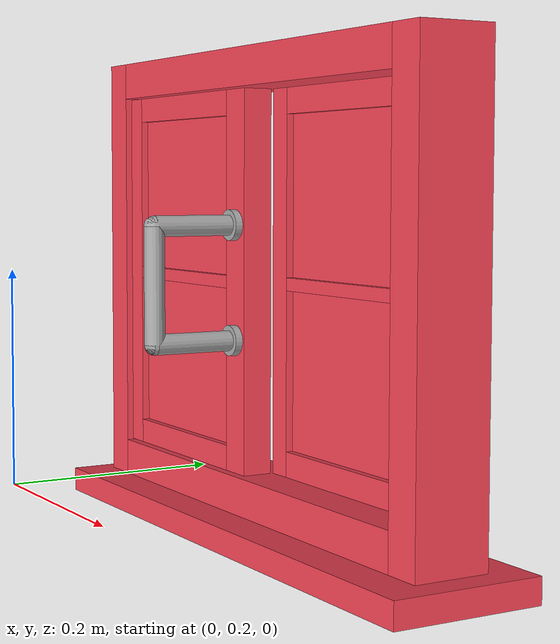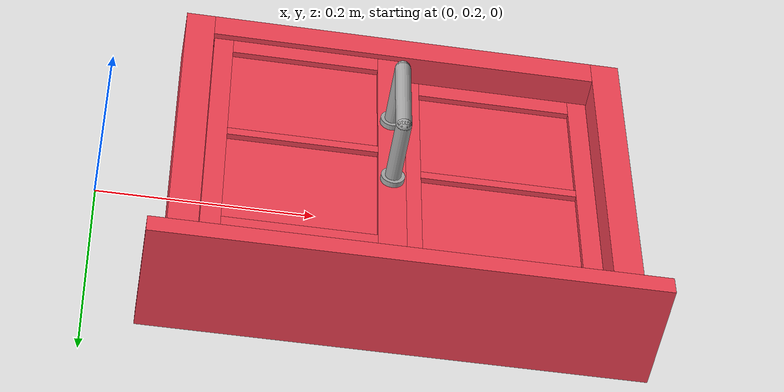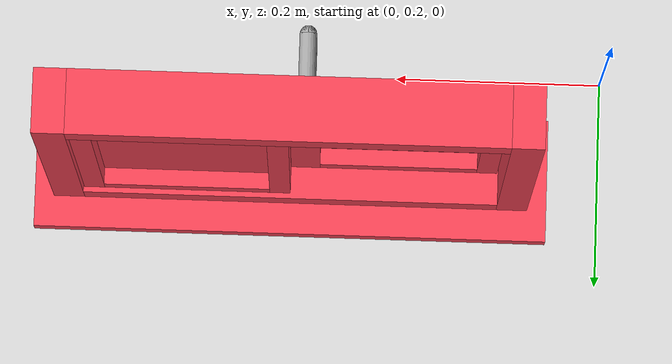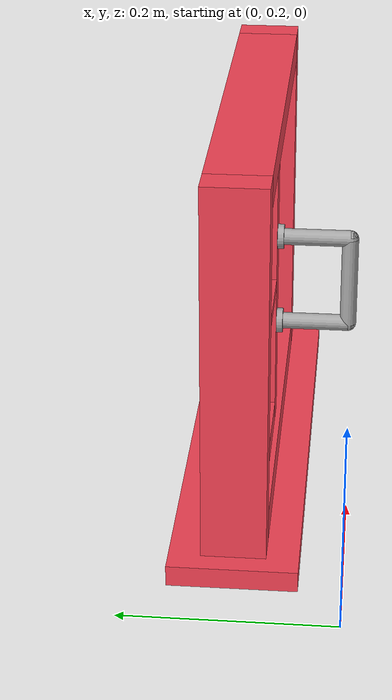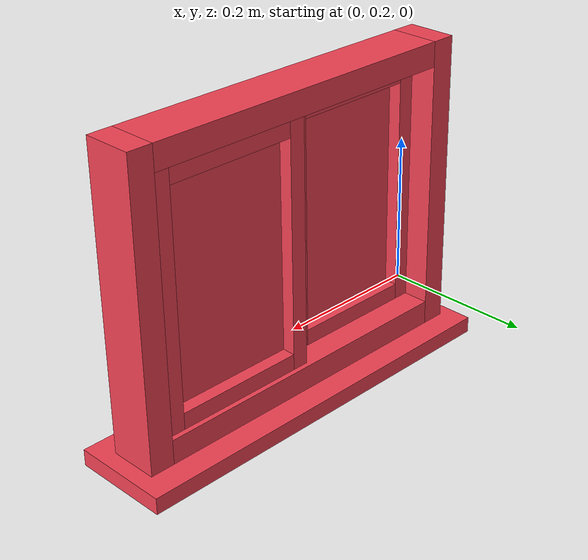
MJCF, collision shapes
<mujoco model="window">
    <compiler angle="radian" inertiafromgeom="auto" inertiagrouprange="1 5"/>
    <asset>

        <material name="window_col" rgba="0.96 0.26 0.33 0.5" shininess="0" specular="0"/>
        <material name="window_handle" rgba=".65 .65 .65 1" shininess="1" reflectance=".7" specular=".5"/>
        <material name="window_body" rgba=".3 .3 .3 1" shininess="1" reflectance=".7" specular=".5"/>
        <material name="window_glass" rgba="0 .3 .4 .1" shininess="1" reflectance="1" specular=".5"/>

    </asset>
    <default>
        <default class="window_base">
            <joint armature="0.001" damping="2" frictionloss="2" limited="true"/>
            <geom conaffinity="0" contype="0" group="1" type="mesh"/>
            <position ctrllimited="true" ctrlrange="0 1.57"/>
            <default class="window_viz">
                <geom condim="4" type="mesh"/>
            </default>
            <default class="window_col">
                <geom conaffinity="1" condim="3" contype="1" group="4" material="window_col" solimp="0.99 0.99 0.01"
                      solref="0.01 1"/>
            </default>
            <site type="sphere" size=".01" rgba="0 1 0 1" group="5"/>
        </default>
    </default>

    <asset>
        <mesh file="metaworld/window/window_h_base.stl" name="window_h_base"/>
        <mesh file="metaworld/window/window_h_frame.stl" name="window_h_frame"/>
        <mesh file="metaworld/window/windowa_h_frame.stl" name="windowa_h_frame"/>
        <mesh file="metaworld/window/windowa_h_glass.stl" name="windowa_h_glass"/>
        <mesh file="metaworld/window/windowb_h_frame.stl" name="windowb_h_frame"/>
        <mesh file="metaworld/window/windowb_h_glass.stl" name="windowb_h_glass"/>

        <mesh file="metaworld/window/window_base.stl" name="window_base"/>
        <mesh file="metaworld/window/window_frame.stl" name="window_frame"/>
        <mesh file="metaworld/window/windowa_frame.stl" name="windowa_frame"/>
        <mesh file="metaworld/window/windowa_glass.stl" name="windowa_glass"/>
        <mesh file="metaworld/window/windowb_frame.stl" name="windowb_frame"/>
        <mesh file="metaworld/window/windowb_glass.stl" name="windowb_glass"/>
    </asset>
    <worldbody>
        <body childclass="window_base" pos="0.3 0.3 .202" name="window">
            <geom material="window_body" mesh="window_h_base" pos="0 0 -0.192"/>
            <geom material="window_body" mesh="window_h_frame"/>
            <geom class="window_col" pos="-0.216 0 0" size="0.015 0.03 0.181" type="box"/>
            <geom class="window_col" pos="0 0 -0.192" size="0.25 0.06 0.01" type="box"/>
            <geom class="window_col" pos="0.216 0 0" size="0.015 0.03 0.181" type="box"/>
            <geom class="window_col" pos="0 0 -0.166" size="0.201 0.03 0.015" type="box"/>
            <geom class="window_col" pos="0 0 0.166" size="0.201 0.03 0.015" type="box"/>

            <body name="windowb_a_virtual_handle" pos="-0.014 -0.075 0.035">
                <site name="window_handle_center_target" pos="0 0 0.0001" euler="0 0 1.57" group="5"/>
            </body>

            <body name="windowb_a">
                <site name="window_handle_center" pos="-0.014 -0.075 0.035" euler="0 0 1.57" group="5"/>
                <joint type="slide" range="0 .2" axis="1 0 0" name="window_slide"/>
                <geom material="window_handle" euler="1.57 0 0" pos="-0.014 -0.028 0.045" size="0.012  0.003"
                      type="cylinder"/>
                <geom material="window_handle" euler="1.57 0 0" pos="-0.014 -0.028 -0.045" size="0.012 0.003"
                      type="cylinder"/>
                <geom material="window_handle" euler="1.57 0 0" pos="-0.014 -0.06 0.045" size="0.008 0.035"
                      type="capsule"/>
                <geom material="window_handle" euler="1.57 0 0" pos="-0.014 -0.06 -0.045" size="0.008 0.035"
                      type="capsule"/>
                <geom material="window_handle" pos="-0.014 -0.095 0" size="0.008 0.045" type="capsule"/>
                <geom material="window_body" mesh="windowb_h_frame" pos="-0.104 -0.022 0"/>
                <geom material="window_glass" mesh="windowb_h_glass" pos="-0.104 -0.018 0"/>

                <geom class="window_col" euler="1.57 0 0" pos="-0.014 -0.028 0.045" size="0.012  0.003"
                      type="cylinder"/>
                <geom class="window_col" euler="1.57 0 0" pos="-0.014 -0.028 -0.045" size="0.012 0.003"
                      type="cylinder"/>
                <geom class="window_col" euler="1.57 0 0" pos="-0.014 -0.06 0.045" size="0.008 0.035"
                      type="capsule"/>
                <geom class="window_col" euler="1.57 0 0" pos="-0.014 -0.06 -0.045" size="0.008 0.035"
                      type="capsule"/>
                <geom class="window_col" pos="-0.014 -0.095 0" size="0.008 0.045" type="capsule"/>
                <geom class="window_col" pos="-0.014 -0.013 0" size="0.014 0.012 0.15" type="box"/>
                <geom class="window_col" pos="-0.19 -0.013 0" size="0.01 0.012 0.15" type="box"/>
                <geom class="window_col" pos="-0.104 -0.013 0.14" size="0.076 0.012 0.01" type="box"/>
                <geom class="window_col" pos="-0.104 -0.013 -0.14" size="0.076 0.012 0.01" type="box"/>
                <geom class="window_col" pos="-0.104 -0.018 0" size="0.076 0.001 0.13" type="box"/>
                <geom class="window_col" pos="-0.104 -0.022 0" size="0.076 0.003 0.005" type="box"/>
            </body>
            <body name="windowb_b" pos="0.1 0.013 0">
                <geom material="window_body" mesh="windowa_h_frame"/>
                <geom material="window_glass" mesh="windowa_h_glass" pos="0 -0.005 0"/>
                <geom class="window_col" pos="0 0 -0.14" size="0.08 0.012 0.01" type="box"/>
                <geom class="window_col" pos="0 0 0.14" size="0.08 0.012 0.01" type="box"/>
                <geom class="window_col" pos="0 -0.005 0" size="0.08 0.001 0.13" type="box"/>
                <geom class="window_col" pos="-0.0 -0.009 0" size="0.08 0.003 0.005" type="box"/>
                <geom class="window_col" pos="-0.09 0 0" size="0.01 0.012 0.15" type="box"/>
                <geom class="window_col" pos="0.09 0 0" size="0.01 0.012 0.15" type="box"/>
            </body>
        </body>
    </worldbody>
</mujoco>
